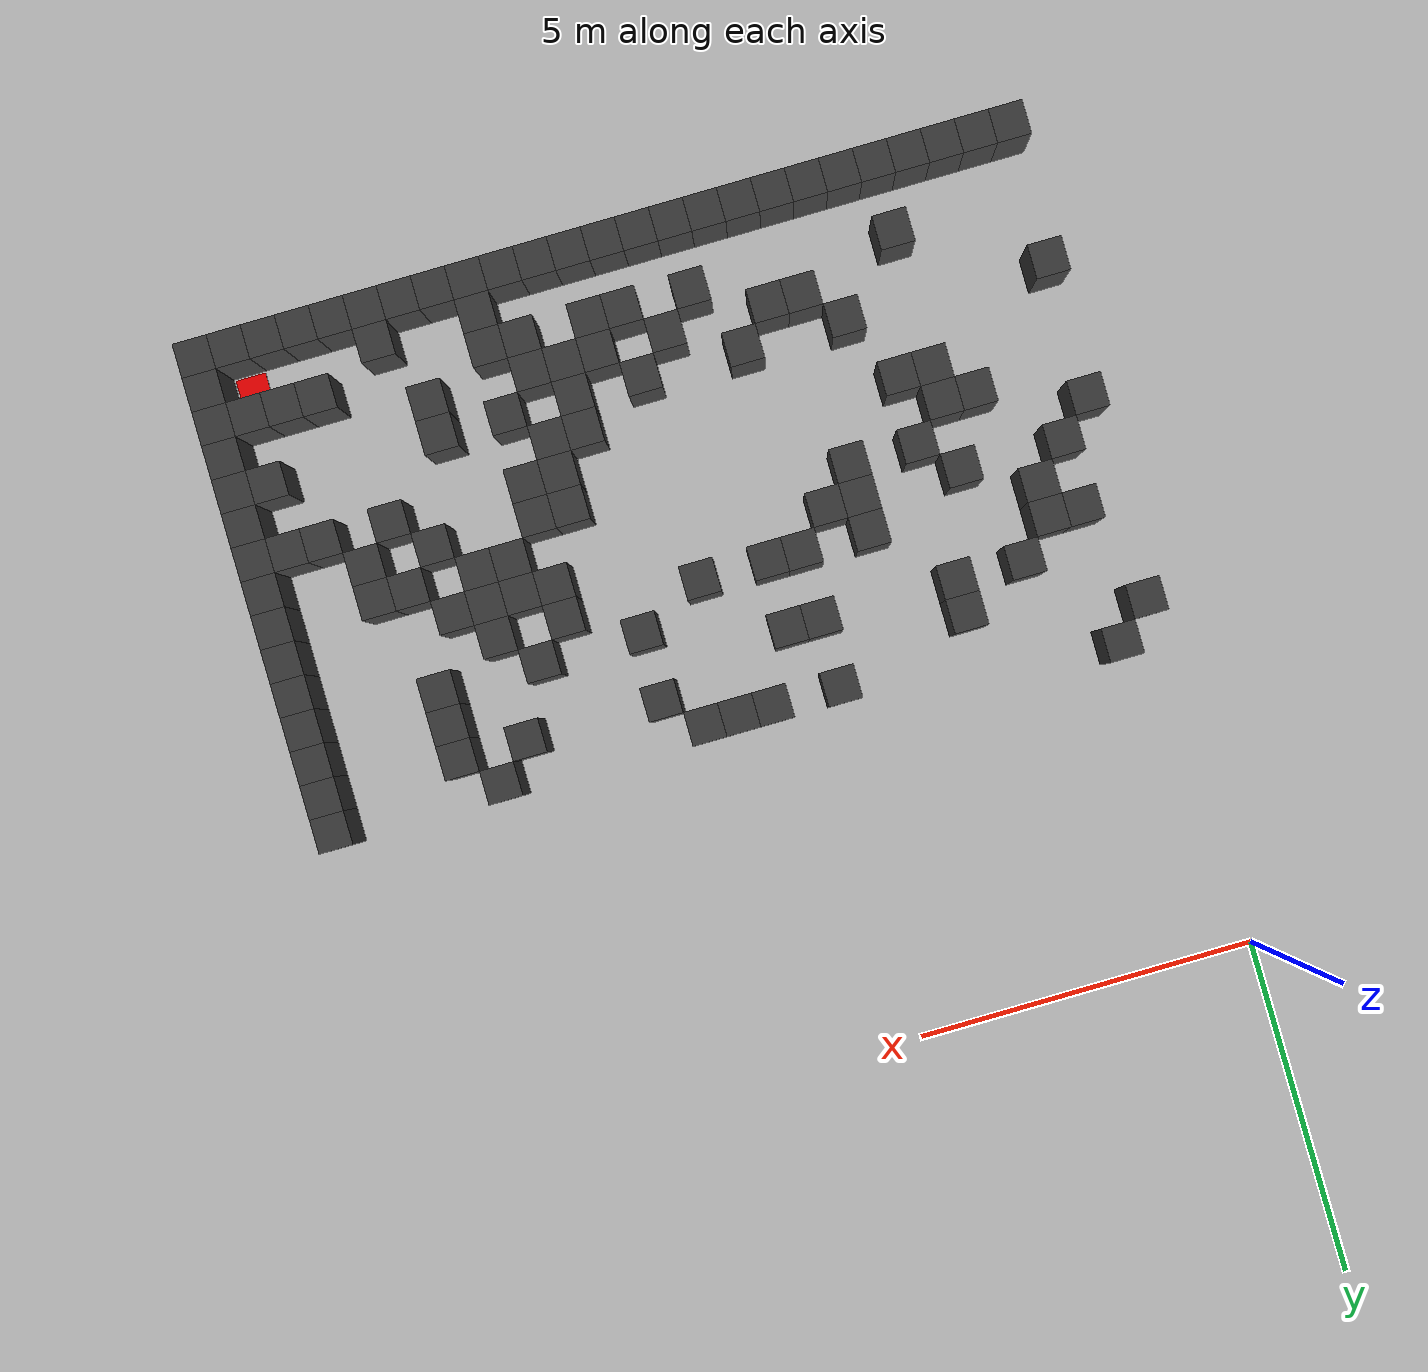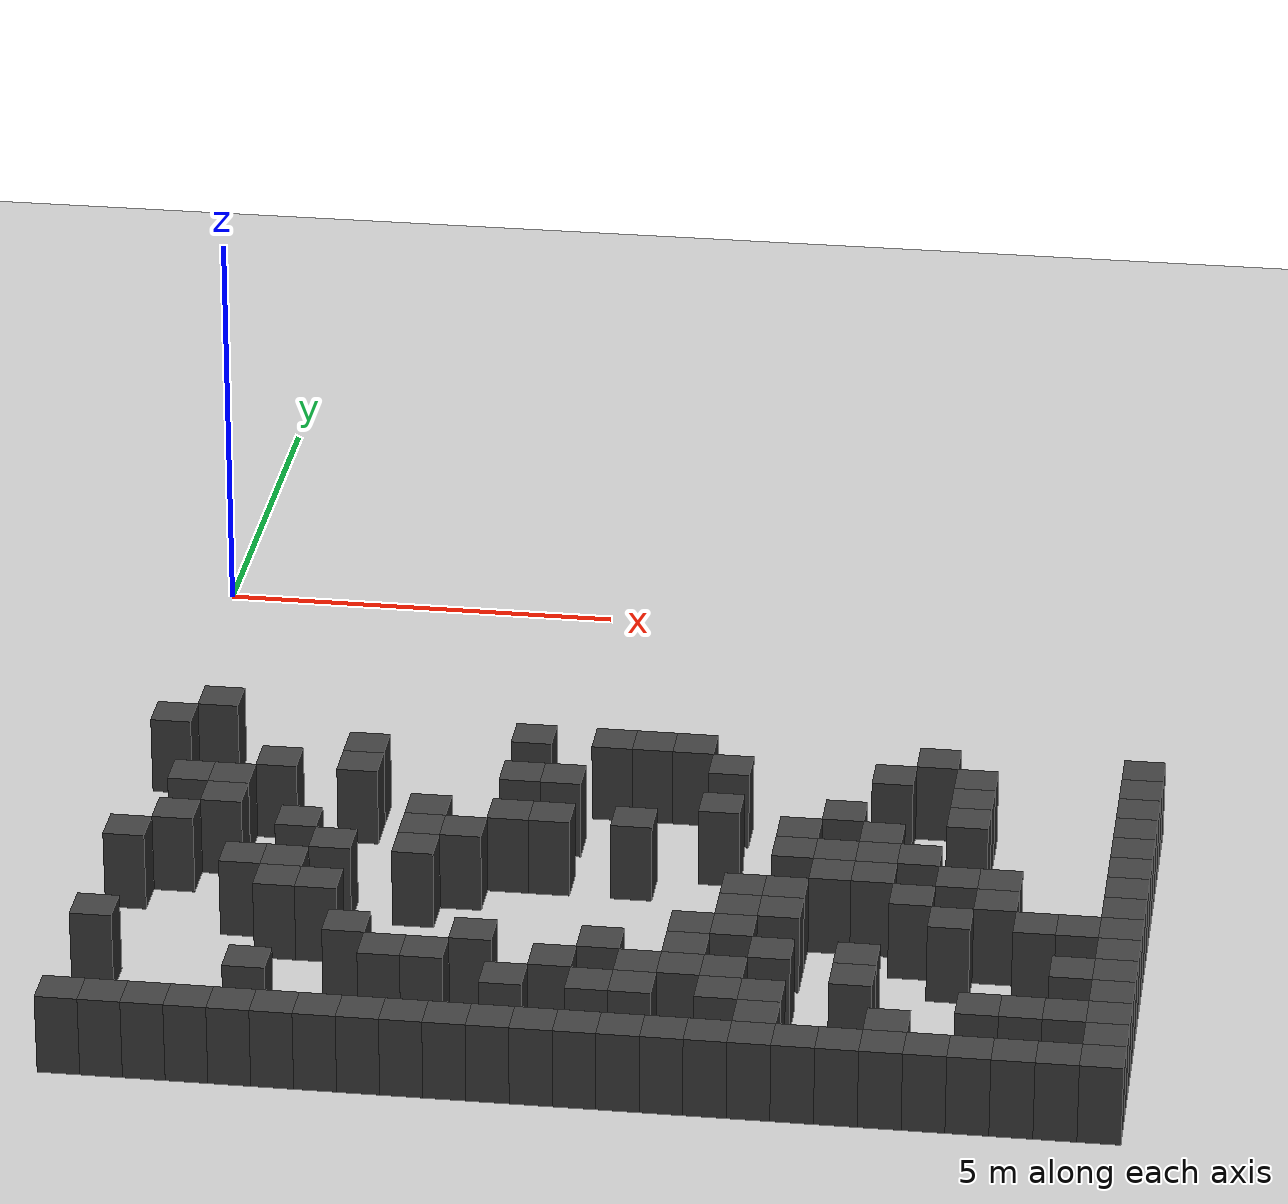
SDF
<sdf version="1.7">
 <world name="map_4951">
  <model name="ground_plane">
   <static>true</static>
   <link name="link">
    <collision name="collision">
     <geometry><plane><normal>0 0 1</normal><size>200 200</size></plane></geometry>
    </collision>
    <visual name="visual">
     <geometry><plane><normal>0 0 1</normal><size>200 200</size></plane></geometry>
     <material><ambient>0.8 0.8 0.8 1</ambient><diffuse>0.8 0.8 0.8 1</diffuse></material>
    </visual>
   </link>
  </model>
  <model name="maze_environment">
   <static>true</static>
   <link name="wall_494">
    <pose>0.750 -4.750 0.500 0 0 0</pose>
    <collision name="col"><geometry><box><size>0.5 0.5 1.0</size></box></geometry></collision>
    <visual name="vis">
     <geometry><box><size>0.5 0.5 1.0</size></box></geometry>
     <material><ambient>0.15 0.15 0.15 1</ambient><diffuse>0.25 0.25 0.25 1</diffuse></material>
    </visual>
   </link>
   <link name="wall_510">
    <pose>0.250 -5.250 0.500 0 0 0</pose>
    <collision name="col"><geometry><box><size>0.5 0.5 1.0</size></box></geometry></collision>
    <visual name="vis">
     <geometry><box><size>0.5 0.5 1.0</size></box></geometry>
     <material><ambient>0.15 0.15 0.15 1</ambient><diffuse>0.25 0.25 0.25 1</diffuse></material>
    </visual>
   </link>
   <link name="wall_511">
    <pose>4.750 -5.250 0.500 0 0 0</pose>
    <collision name="col"><geometry><box><size>0.5 0.5 1.0</size></box></geometry></collision>
    <visual name="vis">
     <geometry><box><size>0.5 0.5 1.0</size></box></geometry>
     <material><ambient>0.15 0.15 0.15 1</ambient><diffuse>0.25 0.25 0.25 1</diffuse></material>
    </visual>
   </link>
   <link name="wall_512">
    <pose>5.750 -5.250 0.500 0 0 0</pose>
    <collision name="col"><geometry><box><size>0.5 0.5 1.0</size></box></geometry></collision>
    <visual name="vis">
     <geometry><box><size>0.5 0.5 1.0</size></box></geometry>
     <material><ambient>0.15 0.15 0.15 1</ambient><diffuse>0.25 0.25 0.25 1</diffuse></material>
    </visual>
   </link>
   <link name="wall_513">
    <pose>6.250 -5.250 0.500 0 0 0</pose>
    <collision name="col"><geometry><box><size>0.5 0.5 1.0</size></box></geometry></collision>
    <visual name="vis">
     <geometry><box><size>0.5 0.5 1.0</size></box></geometry>
     <material><ambient>0.15 0.15 0.15 1</ambient><diffuse>0.25 0.25 0.25 1</diffuse></material>
    </visual>
   </link>
   <link name="wall_514">
    <pose>6.750 -5.250 0.500 0 0 0</pose>
    <collision name="col"><geometry><box><size>0.5 0.5 1.0</size></box></geometry></collision>
    <visual name="vis">
     <geometry><box><size>0.5 0.5 1.0</size></box></geometry>
     <material><ambient>0.15 0.15 0.15 1</ambient><diffuse>0.25 0.25 0.25 1</diffuse></material>
    </visual>
   </link>
   <link name="wall_515">
    <pose>9.750 -5.250 0.500 0 0 0</pose>
    <collision name="col"><geometry><box><size>0.5 0.5 1.0</size></box></geometry></collision>
    <visual name="vis">
     <geometry><box><size>0.5 0.5 1.0</size></box></geometry>
     <material><ambient>0.15 0.15 0.15 1</ambient><diffuse>0.25 0.25 0.25 1</diffuse></material>
    </visual>
   </link>
   <link name="wall_516">
    <pose>12.250 -5.250 0.500 0 0 0</pose>
    <collision name="col"><geometry><box><size>0.5 0.5 1.0</size></box></geometry></collision>
    <visual name="vis">
     <geometry><box><size>0.5 0.5 1.0</size></box></geometry>
     <material><ambient>0.15 0.15 0.15 1</ambient><diffuse>0.25 0.25 0.25 1</diffuse></material>
    </visual>
   </link>
   <link name="wall_524">
    <pose>2.750 -5.750 0.500 0 0 0</pose>
    <collision name="col"><geometry><box><size>0.5 0.5 1.0</size></box></geometry></collision>
    <visual name="vis">
     <geometry><box><size>0.5 0.5 1.0</size></box></geometry>
     <material><ambient>0.15 0.15 0.15 1</ambient><diffuse>0.25 0.25 0.25 1</diffuse></material>
    </visual>
   </link>
   <link name="wall_525">
    <pose>7.250 -5.750 0.500 0 0 0</pose>
    <collision name="col"><geometry><box><size>0.5 0.5 1.0</size></box></geometry></collision>
    <visual name="vis">
     <geometry><box><size>0.5 0.5 1.0</size></box></geometry>
     <material><ambient>0.15 0.15 0.15 1</ambient><diffuse>0.25 0.25 0.25 1</diffuse></material>
    </visual>
   </link>
   <link name="wall_526">
    <pose>9.250 -5.750 0.500 0 0 0</pose>
    <collision name="col"><geometry><box><size>0.5 0.5 1.0</size></box></geometry></collision>
    <visual name="vis">
     <geometry><box><size>0.5 0.5 1.0</size></box></geometry>
     <material><ambient>0.15 0.15 0.15 1</ambient><diffuse>0.25 0.25 0.25 1</diffuse></material>
    </visual>
   </link>
   <link name="wall_527">
    <pose>10.250 -5.750 0.500 0 0 0</pose>
    <collision name="col"><geometry><box><size>0.5 0.5 1.0</size></box></geometry></collision>
    <visual name="vis">
     <geometry><box><size>0.5 0.5 1.0</size></box></geometry>
     <material><ambient>0.15 0.15 0.15 1</ambient><diffuse>0.25 0.25 0.25 1</diffuse></material>
    </visual>
   </link>
   <link name="wall_528">
    <pose>12.250 -5.750 0.500 0 0 0</pose>
    <collision name="col"><geometry><box><size>0.5 0.5 1.0</size></box></geometry></collision>
    <visual name="vis">
     <geometry><box><size>0.5 0.5 1.0</size></box></geometry>
     <material><ambient>0.15 0.15 0.15 1</ambient><diffuse>0.25 0.25 0.25 1</diffuse></material>
    </visual>
   </link>
   <link name="wall_534">
    <pose>1.750 -6.250 0.500 0 0 0</pose>
    <collision name="col"><geometry><box><size>0.5 0.5 1.0</size></box></geometry></collision>
    <visual name="vis">
     <geometry><box><size>0.5 0.5 1.0</size></box></geometry>
     <material><ambient>0.15 0.15 0.15 1</ambient><diffuse>0.25 0.25 0.25 1</diffuse></material>
    </visual>
   </link>
   <link name="wall_535">
    <pose>2.750 -6.250 0.500 0 0 0</pose>
    <collision name="col"><geometry><box><size>0.5 0.5 1.0</size></box></geometry></collision>
    <visual name="vis">
     <geometry><box><size>0.5 0.5 1.0</size></box></geometry>
     <material><ambient>0.15 0.15 0.15 1</ambient><diffuse>0.25 0.25 0.25 1</diffuse></material>
    </visual>
   </link>
   <link name="wall_536">
    <pose>4.750 -6.250 0.500 0 0 0</pose>
    <collision name="col"><geometry><box><size>0.5 0.5 1.0</size></box></geometry></collision>
    <visual name="vis">
     <geometry><box><size>0.5 0.5 1.0</size></box></geometry>
     <material><ambient>0.15 0.15 0.15 1</ambient><diffuse>0.25 0.25 0.25 1</diffuse></material>
    </visual>
   </link>
   <link name="wall_537">
    <pose>5.250 -6.250 0.500 0 0 0</pose>
    <collision name="col"><geometry><box><size>0.5 0.5 1.0</size></box></geometry></collision>
    <visual name="vis">
     <geometry><box><size>0.5 0.5 1.0</size></box></geometry>
     <material><ambient>0.15 0.15 0.15 1</ambient><diffuse>0.25 0.25 0.25 1</diffuse></material>
    </visual>
   </link>
   <link name="wall_538">
    <pose>10.250 -6.250 0.500 0 0 0</pose>
    <collision name="col"><geometry><box><size>0.5 0.5 1.0</size></box></geometry></collision>
    <visual name="vis">
     <geometry><box><size>0.5 0.5 1.0</size></box></geometry>
     <material><ambient>0.15 0.15 0.15 1</ambient><diffuse>0.25 0.25 0.25 1</diffuse></material>
    </visual>
   </link>
   <link name="wall_539">
    <pose>12.250 -6.250 0.500 0 0 0</pose>
    <collision name="col"><geometry><box><size>0.5 0.5 1.0</size></box></geometry></collision>
    <visual name="vis">
     <geometry><box><size>0.5 0.5 1.0</size></box></geometry>
     <material><ambient>0.15 0.15 0.15 1</ambient><diffuse>0.25 0.25 0.25 1</diffuse></material>
    </visual>
   </link>
   <link name="wall_545">
    <pose>0.750 -6.750 0.500 0 0 0</pose>
    <collision name="col"><geometry><box><size>0.5 0.5 1.0</size></box></geometry></collision>
    <visual name="vis">
     <geometry><box><size>0.5 0.5 1.0</size></box></geometry>
     <material><ambient>0.15 0.15 0.15 1</ambient><diffuse>0.25 0.25 0.25 1</diffuse></material>
    </visual>
   </link>
   <link name="wall_546">
    <pose>1.250 -6.750 0.500 0 0 0</pose>
    <collision name="col"><geometry><box><size>0.5 0.5 1.0</size></box></geometry></collision>
    <visual name="vis">
     <geometry><box><size>0.5 0.5 1.0</size></box></geometry>
     <material><ambient>0.15 0.15 0.15 1</ambient><diffuse>0.25 0.25 0.25 1</diffuse></material>
    </visual>
   </link>
   <link name="wall_547">
    <pose>7.250 -6.750 0.500 0 0 0</pose>
    <collision name="col"><geometry><box><size>0.5 0.5 1.0</size></box></geometry></collision>
    <visual name="vis">
     <geometry><box><size>0.5 0.5 1.0</size></box></geometry>
     <material><ambient>0.15 0.15 0.15 1</ambient><diffuse>0.25 0.25 0.25 1</diffuse></material>
    </visual>
   </link>
   <link name="wall_548">
    <pose>8.750 -6.750 0.500 0 0 0</pose>
    <collision name="col"><geometry><box><size>0.5 0.5 1.0</size></box></geometry></collision>
    <visual name="vis">
     <geometry><box><size>0.5 0.5 1.0</size></box></geometry>
     <material><ambient>0.15 0.15 0.15 1</ambient><diffuse>0.25 0.25 0.25 1</diffuse></material>
    </visual>
   </link>
   <link name="wall_549">
    <pose>10.250 -6.750 0.500 0 0 0</pose>
    <collision name="col"><geometry><box><size>0.5 0.5 1.0</size></box></geometry></collision>
    <visual name="vis">
     <geometry><box><size>0.5 0.5 1.0</size></box></geometry>
     <material><ambient>0.15 0.15 0.15 1</ambient><diffuse>0.25 0.25 0.25 1</diffuse></material>
    </visual>
   </link>
   <link name="wall_550">
    <pose>12.250 -6.750 0.500 0 0 0</pose>
    <collision name="col"><geometry><box><size>0.5 0.5 1.0</size></box></geometry></collision>
    <visual name="vis">
     <geometry><box><size>0.5 0.5 1.0</size></box></geometry>
     <material><ambient>0.15 0.15 0.15 1</ambient><diffuse>0.25 0.25 0.25 1</diffuse></material>
    </visual>
   </link>
   <link name="wall_559">
    <pose>1.250 -7.250 0.500 0 0 0</pose>
    <collision name="col"><geometry><box><size>0.5 0.5 1.0</size></box></geometry></collision>
    <visual name="vis">
     <geometry><box><size>0.5 0.5 1.0</size></box></geometry>
     <material><ambient>0.15 0.15 0.15 1</ambient><diffuse>0.25 0.25 0.25 1</diffuse></material>
    </visual>
   </link>
   <link name="wall_560">
    <pose>3.750 -7.250 0.500 0 0 0</pose>
    <collision name="col"><geometry><box><size>0.5 0.5 1.0</size></box></geometry></collision>
    <visual name="vis">
     <geometry><box><size>0.5 0.5 1.0</size></box></geometry>
     <material><ambient>0.15 0.15 0.15 1</ambient><diffuse>0.25 0.25 0.25 1</diffuse></material>
    </visual>
   </link>
   <link name="wall_561">
    <pose>4.750 -7.250 0.500 0 0 0</pose>
    <collision name="col"><geometry><box><size>0.5 0.5 1.0</size></box></geometry></collision>
    <visual name="vis">
     <geometry><box><size>0.5 0.5 1.0</size></box></geometry>
     <material><ambient>0.15 0.15 0.15 1</ambient><diffuse>0.25 0.25 0.25 1</diffuse></material>
    </visual>
   </link>
   <link name="wall_562">
    <pose>5.250 -7.250 0.500 0 0 0</pose>
    <collision name="col"><geometry><box><size>0.5 0.5 1.0</size></box></geometry></collision>
    <visual name="vis">
     <geometry><box><size>0.5 0.5 1.0</size></box></geometry>
     <material><ambient>0.15 0.15 0.15 1</ambient><diffuse>0.25 0.25 0.25 1</diffuse></material>
    </visual>
   </link>
   <link name="wall_563">
    <pose>6.250 -7.250 0.500 0 0 0</pose>
    <collision name="col"><geometry><box><size>0.5 0.5 1.0</size></box></geometry></collision>
    <visual name="vis">
     <geometry><box><size>0.5 0.5 1.0</size></box></geometry>
     <material><ambient>0.15 0.15 0.15 1</ambient><diffuse>0.25 0.25 0.25 1</diffuse></material>
    </visual>
   </link>
   <link name="wall_564">
    <pose>8.250 -7.250 0.500 0 0 0</pose>
    <collision name="col"><geometry><box><size>0.5 0.5 1.0</size></box></geometry></collision>
    <visual name="vis">
     <geometry><box><size>0.5 0.5 1.0</size></box></geometry>
     <material><ambient>0.15 0.15 0.15 1</ambient><diffuse>0.25 0.25 0.25 1</diffuse></material>
    </visual>
   </link>
   <link name="wall_565">
    <pose>9.250 -7.250 0.500 0 0 0</pose>
    <collision name="col"><geometry><box><size>0.5 0.5 1.0</size></box></geometry></collision>
    <visual name="vis">
     <geometry><box><size>0.5 0.5 1.0</size></box></geometry>
     <material><ambient>0.15 0.15 0.15 1</ambient><diffuse>0.25 0.25 0.25 1</diffuse></material>
    </visual>
   </link>
   <link name="wall_566">
    <pose>12.250 -7.250 0.500 0 0 0</pose>
    <collision name="col"><geometry><box><size>0.5 0.5 1.0</size></box></geometry></collision>
    <visual name="vis">
     <geometry><box><size>0.5 0.5 1.0</size></box></geometry>
     <material><ambient>0.15 0.15 0.15 1</ambient><diffuse>0.25 0.25 0.25 1</diffuse></material>
    </visual>
   </link>
   <link name="wall_570">
    <pose>0.750 -7.750 0.500 0 0 0</pose>
    <collision name="col"><geometry><box><size>0.5 0.5 1.0</size></box></geometry></collision>
    <visual name="vis">
     <geometry><box><size>0.5 0.5 1.0</size></box></geometry>
     <material><ambient>0.15 0.15 0.15 1</ambient><diffuse>0.25 0.25 0.25 1</diffuse></material>
    </visual>
   </link>
   <link name="wall_571">
    <pose>2.250 -7.750 0.500 0 0 0</pose>
    <collision name="col"><geometry><box><size>0.5 0.5 1.0</size></box></geometry></collision>
    <visual name="vis">
     <geometry><box><size>0.5 0.5 1.0</size></box></geometry>
     <material><ambient>0.15 0.15 0.15 1</ambient><diffuse>0.25 0.25 0.25 1</diffuse></material>
    </visual>
   </link>
   <link name="wall_572">
    <pose>3.750 -7.750 0.500 0 0 0</pose>
    <collision name="col"><geometry><box><size>0.5 0.5 1.0</size></box></geometry></collision>
    <visual name="vis">
     <geometry><box><size>0.5 0.5 1.0</size></box></geometry>
     <material><ambient>0.15 0.15 0.15 1</ambient><diffuse>0.25 0.25 0.25 1</diffuse></material>
    </visual>
   </link>
   <link name="wall_573">
    <pose>4.250 -7.750 0.500 0 0 0</pose>
    <collision name="col"><geometry><box><size>0.5 0.5 1.0</size></box></geometry></collision>
    <visual name="vis">
     <geometry><box><size>0.5 0.5 1.0</size></box></geometry>
     <material><ambient>0.15 0.15 0.15 1</ambient><diffuse>0.25 0.25 0.25 1</diffuse></material>
    </visual>
   </link>
   <link name="wall_574">
    <pose>8.250 -7.750 0.500 0 0 0</pose>
    <collision name="col"><geometry><box><size>0.5 0.5 1.0</size></box></geometry></collision>
    <visual name="vis">
     <geometry><box><size>0.5 0.5 1.0</size></box></geometry>
     <material><ambient>0.15 0.15 0.15 1</ambient><diffuse>0.25 0.25 0.25 1</diffuse></material>
    </visual>
   </link>
   <link name="wall_575">
    <pose>8.750 -7.750 0.500 0 0 0</pose>
    <collision name="col"><geometry><box><size>0.5 0.5 1.0</size></box></geometry></collision>
    <visual name="vis">
     <geometry><box><size>0.5 0.5 1.0</size></box></geometry>
     <material><ambient>0.15 0.15 0.15 1</ambient><diffuse>0.25 0.25 0.25 1</diffuse></material>
    </visual>
   </link>
   <link name="wall_576">
    <pose>9.250 -7.750 0.500 0 0 0</pose>
    <collision name="col"><geometry><box><size>0.5 0.5 1.0</size></box></geometry></collision>
    <visual name="vis">
     <geometry><box><size>0.5 0.5 1.0</size></box></geometry>
     <material><ambient>0.15 0.15 0.15 1</ambient><diffuse>0.25 0.25 0.25 1</diffuse></material>
    </visual>
   </link>
   <link name="wall_577">
    <pose>9.750 -7.750 0.500 0 0 0</pose>
    <collision name="col"><geometry><box><size>0.5 0.5 1.0</size></box></geometry></collision>
    <visual name="vis">
     <geometry><box><size>0.5 0.5 1.0</size></box></geometry>
     <material><ambient>0.15 0.15 0.15 1</ambient><diffuse>0.25 0.25 0.25 1</diffuse></material>
    </visual>
   </link>
   <link name="wall_578">
    <pose>12.250 -7.750 0.500 0 0 0</pose>
    <collision name="col"><geometry><box><size>0.5 0.5 1.0</size></box></geometry></collision>
    <visual name="vis">
     <geometry><box><size>0.5 0.5 1.0</size></box></geometry>
     <material><ambient>0.15 0.15 0.15 1</ambient><diffuse>0.25 0.25 0.25 1</diffuse></material>
    </visual>
   </link>
   <link name="wall_588">
    <pose>0.250 -8.250 0.500 0 0 0</pose>
    <collision name="col"><geometry><box><size>0.5 0.5 1.0</size></box></geometry></collision>
    <visual name="vis">
     <geometry><box><size>0.5 0.5 1.0</size></box></geometry>
     <material><ambient>0.15 0.15 0.15 1</ambient><diffuse>0.25 0.25 0.25 1</diffuse></material>
    </visual>
   </link>
   <link name="wall_589">
    <pose>2.750 -8.250 0.500 0 0 0</pose>
    <collision name="col"><geometry><box><size>0.5 0.5 1.0</size></box></geometry></collision>
    <visual name="vis">
     <geometry><box><size>0.5 0.5 1.0</size></box></geometry>
     <material><ambient>0.15 0.15 0.15 1</ambient><diffuse>0.25 0.25 0.25 1</diffuse></material>
    </visual>
   </link>
   <link name="wall_590">
    <pose>3.750 -8.250 0.500 0 0 0</pose>
    <collision name="col"><geometry><box><size>0.5 0.5 1.0</size></box></geometry></collision>
    <visual name="vis">
     <geometry><box><size>0.5 0.5 1.0</size></box></geometry>
     <material><ambient>0.15 0.15 0.15 1</ambient><diffuse>0.25 0.25 0.25 1</diffuse></material>
    </visual>
   </link>
   <link name="wall_591">
    <pose>8.750 -8.250 0.500 0 0 0</pose>
    <collision name="col"><geometry><box><size>0.5 0.5 1.0</size></box></geometry></collision>
    <visual name="vis">
     <geometry><box><size>0.5 0.5 1.0</size></box></geometry>
     <material><ambient>0.15 0.15 0.15 1</ambient><diffuse>0.25 0.25 0.25 1</diffuse></material>
    </visual>
   </link>
   <link name="wall_592">
    <pose>9.250 -8.250 0.500 0 0 0</pose>
    <collision name="col"><geometry><box><size>0.5 0.5 1.0</size></box></geometry></collision>
    <visual name="vis">
     <geometry><box><size>0.5 0.5 1.0</size></box></geometry>
     <material><ambient>0.15 0.15 0.15 1</ambient><diffuse>0.25 0.25 0.25 1</diffuse></material>
    </visual>
   </link>
   <link name="wall_593">
    <pose>10.250 -8.250 0.500 0 0 0</pose>
    <collision name="col"><geometry><box><size>0.5 0.5 1.0</size></box></geometry></collision>
    <visual name="vis">
     <geometry><box><size>0.5 0.5 1.0</size></box></geometry>
     <material><ambient>0.15 0.15 0.15 1</ambient><diffuse>0.25 0.25 0.25 1</diffuse></material>
    </visual>
   </link>
   <link name="wall_594">
    <pose>10.750 -8.250 0.500 0 0 0</pose>
    <collision name="col"><geometry><box><size>0.5 0.5 1.0</size></box></geometry></collision>
    <visual name="vis">
     <geometry><box><size>0.5 0.5 1.0</size></box></geometry>
     <material><ambient>0.15 0.15 0.15 1</ambient><diffuse>0.25 0.25 0.25 1</diffuse></material>
    </visual>
   </link>
   <link name="wall_595">
    <pose>12.250 -8.250 0.500 0 0 0</pose>
    <collision name="col"><geometry><box><size>0.5 0.5 1.0</size></box></geometry></collision>
    <visual name="vis">
     <geometry><box><size>0.5 0.5 1.0</size></box></geometry>
     <material><ambient>0.15 0.15 0.15 1</ambient><diffuse>0.25 0.25 0.25 1</diffuse></material>
    </visual>
   </link>
   <link name="wall_602">
    <pose>1.750 -8.750 0.500 0 0 0</pose>
    <collision name="col"><geometry><box><size>0.5 0.5 1.0</size></box></geometry></collision>
    <visual name="vis">
     <geometry><box><size>0.5 0.5 1.0</size></box></geometry>
     <material><ambient>0.15 0.15 0.15 1</ambient><diffuse>0.25 0.25 0.25 1</diffuse></material>
    </visual>
   </link>
   <link name="wall_603">
    <pose>2.250 -8.750 0.500 0 0 0</pose>
    <collision name="col"><geometry><box><size>0.5 0.5 1.0</size></box></geometry></collision>
    <visual name="vis">
     <geometry><box><size>0.5 0.5 1.0</size></box></geometry>
     <material><ambient>0.15 0.15 0.15 1</ambient><diffuse>0.25 0.25 0.25 1</diffuse></material>
    </visual>
   </link>
   <link name="wall_604">
    <pose>7.750 -8.750 0.500 0 0 0</pose>
    <collision name="col"><geometry><box><size>0.5 0.5 1.0</size></box></geometry></collision>
    <visual name="vis">
     <geometry><box><size>0.5 0.5 1.0</size></box></geometry>
     <material><ambient>0.15 0.15 0.15 1</ambient><diffuse>0.25 0.25 0.25 1</diffuse></material>
    </visual>
   </link>
   <link name="wall_605">
    <pose>8.250 -8.750 0.500 0 0 0</pose>
    <collision name="col"><geometry><box><size>0.5 0.5 1.0</size></box></geometry></collision>
    <visual name="vis">
     <geometry><box><size>0.5 0.5 1.0</size></box></geometry>
     <material><ambient>0.15 0.15 0.15 1</ambient><diffuse>0.25 0.25 0.25 1</diffuse></material>
    </visual>
   </link>
   <link name="wall_606">
    <pose>9.750 -8.750 0.500 0 0 0</pose>
    <collision name="col"><geometry><box><size>0.5 0.5 1.0</size></box></geometry></collision>
    <visual name="vis">
     <geometry><box><size>0.5 0.5 1.0</size></box></geometry>
     <material><ambient>0.15 0.15 0.15 1</ambient><diffuse>0.25 0.25 0.25 1</diffuse></material>
    </visual>
   </link>
   <link name="wall_607">
    <pose>10.750 -8.750 0.500 0 0 0</pose>
    <collision name="col"><geometry><box><size>0.5 0.5 1.0</size></box></geometry></collision>
    <visual name="vis">
     <geometry><box><size>0.5 0.5 1.0</size></box></geometry>
     <material><ambient>0.15 0.15 0.15 1</ambient><diffuse>0.25 0.25 0.25 1</diffuse></material>
    </visual>
   </link>
   <link name="wall_608">
    <pose>12.250 -8.750 0.500 0 0 0</pose>
    <collision name="col"><geometry><box><size>0.5 0.5 1.0</size></box></geometry></collision>
    <visual name="vis">
     <geometry><box><size>0.5 0.5 1.0</size></box></geometry>
     <material><ambient>0.15 0.15 0.15 1</ambient><diffuse>0.25 0.25 0.25 1</diffuse></material>
    </visual>
   </link>
   <link name="wall_617">
    <pose>2.250 -9.250 0.500 0 0 0</pose>
    <collision name="col"><geometry><box><size>0.5 0.5 1.0</size></box></geometry></collision>
    <visual name="vis">
     <geometry><box><size>0.5 0.5 1.0</size></box></geometry>
     <material><ambient>0.15 0.15 0.15 1</ambient><diffuse>0.25 0.25 0.25 1</diffuse></material>
    </visual>
   </link>
   <link name="wall_618">
    <pose>2.750 -9.250 0.500 0 0 0</pose>
    <collision name="col"><geometry><box><size>0.5 0.5 1.0</size></box></geometry></collision>
    <visual name="vis">
     <geometry><box><size>0.5 0.5 1.0</size></box></geometry>
     <material><ambient>0.15 0.15 0.15 1</ambient><diffuse>0.25 0.25 0.25 1</diffuse></material>
    </visual>
   </link>
   <link name="wall_619">
    <pose>7.750 -9.250 0.500 0 0 0</pose>
    <collision name="col"><geometry><box><size>0.5 0.5 1.0</size></box></geometry></collision>
    <visual name="vis">
     <geometry><box><size>0.5 0.5 1.0</size></box></geometry>
     <material><ambient>0.15 0.15 0.15 1</ambient><diffuse>0.25 0.25 0.25 1</diffuse></material>
    </visual>
   </link>
   <link name="wall_620">
    <pose>8.250 -9.250 0.500 0 0 0</pose>
    <collision name="col"><geometry><box><size>0.5 0.5 1.0</size></box></geometry></collision>
    <visual name="vis">
     <geometry><box><size>0.5 0.5 1.0</size></box></geometry>
     <material><ambient>0.15 0.15 0.15 1</ambient><diffuse>0.25 0.25 0.25 1</diffuse></material>
    </visual>
   </link>
   <link name="wall_621">
    <pose>10.250 -9.250 0.500 0 0 0</pose>
    <collision name="col"><geometry><box><size>0.5 0.5 1.0</size></box></geometry></collision>
    <visual name="vis">
     <geometry><box><size>0.5 0.5 1.0</size></box></geometry>
     <material><ambient>0.15 0.15 0.15 1</ambient><diffuse>0.25 0.25 0.25 1</diffuse></material>
    </visual>
   </link>
   <link name="wall_622">
    <pose>11.250 -9.250 0.500 0 0 0</pose>
    <collision name="col"><geometry><box><size>0.5 0.5 1.0</size></box></geometry></collision>
    <visual name="vis">
     <geometry><box><size>0.5 0.5 1.0</size></box></geometry>
     <material><ambient>0.15 0.15 0.15 1</ambient><diffuse>0.25 0.25 0.25 1</diffuse></material>
    </visual>
   </link>
   <link name="wall_623">
    <pose>11.750 -9.250 0.500 0 0 0</pose>
    <collision name="col"><geometry><box><size>0.5 0.5 1.0</size></box></geometry></collision>
    <visual name="vis">
     <geometry><box><size>0.5 0.5 1.0</size></box></geometry>
     <material><ambient>0.15 0.15 0.15 1</ambient><diffuse>0.25 0.25 0.25 1</diffuse></material>
    </visual>
   </link>
   <link name="wall_624">
    <pose>12.250 -9.250 0.500 0 0 0</pose>
    <collision name="col"><geometry><box><size>0.5 0.5 1.0</size></box></geometry></collision>
    <visual name="vis">
     <geometry><box><size>0.5 0.5 1.0</size></box></geometry>
     <material><ambient>0.15 0.15 0.15 1</ambient><diffuse>0.25 0.25 0.25 1</diffuse></material>
    </visual>
   </link>
   <link name="wall_632">
    <pose>7.250 -9.750 0.500 0 0 0</pose>
    <collision name="col"><geometry><box><size>0.5 0.5 1.0</size></box></geometry></collision>
    <visual name="vis">
     <geometry><box><size>0.5 0.5 1.0</size></box></geometry>
     <material><ambient>0.15 0.15 0.15 1</ambient><diffuse>0.25 0.25 0.25 1</diffuse></material>
    </visual>
   </link>
   <link name="wall_633">
    <pose>7.750 -9.750 0.500 0 0 0</pose>
    <collision name="col"><geometry><box><size>0.5 0.5 1.0</size></box></geometry></collision>
    <visual name="vis">
     <geometry><box><size>0.5 0.5 1.0</size></box></geometry>
     <material><ambient>0.15 0.15 0.15 1</ambient><diffuse>0.25 0.25 0.25 1</diffuse></material>
    </visual>
   </link>
   <link name="wall_634">
    <pose>12.250 -9.750 0.500 0 0 0</pose>
    <collision name="col"><geometry><box><size>0.5 0.5 1.0</size></box></geometry></collision>
    <visual name="vis">
     <geometry><box><size>0.5 0.5 1.0</size></box></geometry>
     <material><ambient>0.15 0.15 0.15 1</ambient><diffuse>0.25 0.25 0.25 1</diffuse></material>
    </visual>
   </link>
   <link name="wall_644">
    <pose>0.250 -10.250 0.500 0 0 0</pose>
    <collision name="col"><geometry><box><size>0.5 0.5 1.0</size></box></geometry></collision>
    <visual name="vis">
     <geometry><box><size>0.5 0.5 1.0</size></box></geometry>
     <material><ambient>0.15 0.15 0.15 1</ambient><diffuse>0.25 0.25 0.25 1</diffuse></material>
    </visual>
   </link>
   <link name="wall_645">
    <pose>3.250 -10.250 0.500 0 0 0</pose>
    <collision name="col"><geometry><box><size>0.5 0.5 1.0</size></box></geometry></collision>
    <visual name="vis">
     <geometry><box><size>0.5 0.5 1.0</size></box></geometry>
     <material><ambient>0.15 0.15 0.15 1</ambient><diffuse>0.25 0.25 0.25 1</diffuse></material>
    </visual>
   </link>
   <link name="wall_646">
    <pose>4.750 -10.250 0.500 0 0 0</pose>
    <collision name="col"><geometry><box><size>0.5 0.5 1.0</size></box></geometry></collision>
    <visual name="vis">
     <geometry><box><size>0.5 0.5 1.0</size></box></geometry>
     <material><ambient>0.15 0.15 0.15 1</ambient><diffuse>0.25 0.25 0.25 1</diffuse></material>
    </visual>
   </link>
   <link name="wall_647">
    <pose>6.250 -10.250 0.500 0 0 0</pose>
    <collision name="col"><geometry><box><size>0.5 0.5 1.0</size></box></geometry></collision>
    <visual name="vis">
     <geometry><box><size>0.5 0.5 1.0</size></box></geometry>
     <material><ambient>0.15 0.15 0.15 1</ambient><diffuse>0.25 0.25 0.25 1</diffuse></material>
    </visual>
   </link>
   <link name="wall_648">
    <pose>7.250 -10.250 0.500 0 0 0</pose>
    <collision name="col"><geometry><box><size>0.5 0.5 1.0</size></box></geometry></collision>
    <visual name="vis">
     <geometry><box><size>0.5 0.5 1.0</size></box></geometry>
     <material><ambient>0.15 0.15 0.15 1</ambient><diffuse>0.25 0.25 0.25 1</diffuse></material>
    </visual>
   </link>
   <link name="wall_649">
    <pose>8.250 -10.250 0.500 0 0 0</pose>
    <collision name="col"><geometry><box><size>0.5 0.5 1.0</size></box></geometry></collision>
    <visual name="vis">
     <geometry><box><size>0.5 0.5 1.0</size></box></geometry>
     <material><ambient>0.15 0.15 0.15 1</ambient><diffuse>0.25 0.25 0.25 1</diffuse></material>
    </visual>
   </link>
   <link name="wall_650">
    <pose>9.250 -10.250 0.500 0 0 0</pose>
    <collision name="col"><geometry><box><size>0.5 0.5 1.0</size></box></geometry></collision>
    <visual name="vis">
     <geometry><box><size>0.5 0.5 1.0</size></box></geometry>
     <material><ambient>0.15 0.15 0.15 1</ambient><diffuse>0.25 0.25 0.25 1</diffuse></material>
    </visual>
   </link>
   <link name="wall_651">
    <pose>11.750 -10.250 0.500 0 0 0</pose>
    <collision name="col"><geometry><box><size>0.5 0.5 1.0</size></box></geometry></collision>
    <visual name="vis">
     <geometry><box><size>0.5 0.5 1.0</size></box></geometry>
     <material><ambient>0.15 0.15 0.15 1</ambient><diffuse>0.25 0.25 0.25 1</diffuse></material>
    </visual>
   </link>
   <link name="wall_652">
    <pose>12.250 -10.250 0.500 0 0 0</pose>
    <collision name="col"><geometry><box><size>0.5 0.5 1.0</size></box></geometry></collision>
    <visual name="vis">
     <geometry><box><size>0.5 0.5 1.0</size></box></geometry>
     <material><ambient>0.15 0.15 0.15 1</ambient><diffuse>0.25 0.25 0.25 1</diffuse></material>
    </visual>
   </link>
   <link name="wall_655">
    <pose>3.750 -10.750 0.500 0 0 0</pose>
    <collision name="col"><geometry><box><size>0.5 0.5 1.0</size></box></geometry></collision>
    <visual name="vis">
     <geometry><box><size>0.5 0.5 1.0</size></box></geometry>
     <material><ambient>0.15 0.15 0.15 1</ambient><diffuse>0.25 0.25 0.25 1</diffuse></material>
    </visual>
   </link>
   <link name="wall_656">
    <pose>4.250 -10.750 0.500 0 0 0</pose>
    <collision name="col"><geometry><box><size>0.5 0.5 1.0</size></box></geometry></collision>
    <visual name="vis">
     <geometry><box><size>0.5 0.5 1.0</size></box></geometry>
     <material><ambient>0.15 0.15 0.15 1</ambient><diffuse>0.25 0.25 0.25 1</diffuse></material>
    </visual>
   </link>
   <link name="wall_657">
    <pose>5.750 -10.750 0.500 0 0 0</pose>
    <collision name="col"><geometry><box><size>0.5 0.5 1.0</size></box></geometry></collision>
    <visual name="vis">
     <geometry><box><size>0.5 0.5 1.0</size></box></geometry>
     <material><ambient>0.15 0.15 0.15 1</ambient><diffuse>0.25 0.25 0.25 1</diffuse></material>
    </visual>
   </link>
   <link name="wall_658">
    <pose>6.750 -10.750 0.500 0 0 0</pose>
    <collision name="col"><geometry><box><size>0.5 0.5 1.0</size></box></geometry></collision>
    <visual name="vis">
     <geometry><box><size>0.5 0.5 1.0</size></box></geometry>
     <material><ambient>0.15 0.15 0.15 1</ambient><diffuse>0.25 0.25 0.25 1</diffuse></material>
    </visual>
   </link>
   <link name="wall_659">
    <pose>7.250 -10.750 0.500 0 0 0</pose>
    <collision name="col"><geometry><box><size>0.5 0.5 1.0</size></box></geometry></collision>
    <visual name="vis">
     <geometry><box><size>0.5 0.5 1.0</size></box></geometry>
     <material><ambient>0.15 0.15 0.15 1</ambient><diffuse>0.25 0.25 0.25 1</diffuse></material>
    </visual>
   </link>
   <link name="wall_660">
    <pose>7.750 -10.750 0.500 0 0 0</pose>
    <collision name="col"><geometry><box><size>0.5 0.5 1.0</size></box></geometry></collision>
    <visual name="vis">
     <geometry><box><size>0.5 0.5 1.0</size></box></geometry>
     <material><ambient>0.15 0.15 0.15 1</ambient><diffuse>0.25 0.25 0.25 1</diffuse></material>
    </visual>
   </link>
   <link name="wall_661">
    <pose>9.250 -10.750 0.500 0 0 0</pose>
    <collision name="col"><geometry><box><size>0.5 0.5 1.0</size></box></geometry></collision>
    <visual name="vis">
     <geometry><box><size>0.5 0.5 1.0</size></box></geometry>
     <material><ambient>0.15 0.15 0.15 1</ambient><diffuse>0.25 0.25 0.25 1</diffuse></material>
    </visual>
   </link>
   <link name="wall_662">
    <pose>12.250 -10.750 0.500 0 0 0</pose>
    <collision name="col"><geometry><box><size>0.5 0.5 1.0</size></box></geometry></collision>
    <visual name="vis">
     <geometry><box><size>0.5 0.5 1.0</size></box></geometry>
     <material><ambient>0.15 0.15 0.15 1</ambient><diffuse>0.25 0.25 0.25 1</diffuse></material>
    </visual>
   </link>
   <link name="wall_673">
    <pose>2.250 -11.250 0.500 0 0 0</pose>
    <collision name="col"><geometry><box><size>0.5 0.5 1.0</size></box></geometry></collision>
    <visual name="vis">
     <geometry><box><size>0.5 0.5 1.0</size></box></geometry>
     <material><ambient>0.15 0.15 0.15 1</ambient><diffuse>0.25 0.25 0.25 1</diffuse></material>
    </visual>
   </link>
   <link name="wall_674">
    <pose>5.250 -11.250 0.500 0 0 0</pose>
    <collision name="col"><geometry><box><size>0.5 0.5 1.0</size></box></geometry></collision>
    <visual name="vis">
     <geometry><box><size>0.5 0.5 1.0</size></box></geometry>
     <material><ambient>0.15 0.15 0.15 1</ambient><diffuse>0.25 0.25 0.25 1</diffuse></material>
    </visual>
   </link>
   <link name="wall_675">
    <pose>6.250 -11.250 0.500 0 0 0</pose>
    <collision name="col"><geometry><box><size>0.5 0.5 1.0</size></box></geometry></collision>
    <visual name="vis">
     <geometry><box><size>0.5 0.5 1.0</size></box></geometry>
     <material><ambient>0.15 0.15 0.15 1</ambient><diffuse>0.25 0.25 0.25 1</diffuse></material>
    </visual>
   </link>
   <link name="wall_676">
    <pose>6.750 -11.250 0.500 0 0 0</pose>
    <collision name="col"><geometry><box><size>0.5 0.5 1.0</size></box></geometry></collision>
    <visual name="vis">
     <geometry><box><size>0.5 0.5 1.0</size></box></geometry>
     <material><ambient>0.15 0.15 0.15 1</ambient><diffuse>0.25 0.25 0.25 1</diffuse></material>
    </visual>
   </link>
   <link name="wall_677">
    <pose>7.750 -11.250 0.500 0 0 0</pose>
    <collision name="col"><geometry><box><size>0.5 0.5 1.0</size></box></geometry></collision>
    <visual name="vis">
     <geometry><box><size>0.5 0.5 1.0</size></box></geometry>
     <material><ambient>0.15 0.15 0.15 1</ambient><diffuse>0.25 0.25 0.25 1</diffuse></material>
    </visual>
   </link>
   <link name="wall_678">
    <pose>8.250 -11.250 0.500 0 0 0</pose>
    <collision name="col"><geometry><box><size>0.5 0.5 1.0</size></box></geometry></collision>
    <visual name="vis">
     <geometry><box><size>0.5 0.5 1.0</size></box></geometry>
     <material><ambient>0.15 0.15 0.15 1</ambient><diffuse>0.25 0.25 0.25 1</diffuse></material>
    </visual>
   </link>
   <link name="wall_679">
    <pose>10.750 -11.250 0.500 0 0 0</pose>
    <collision name="col"><geometry><box><size>0.5 0.5 1.0</size></box></geometry></collision>
    <visual name="vis">
     <geometry><box><size>0.5 0.5 1.0</size></box></geometry>
     <material><ambient>0.15 0.15 0.15 1</ambient><diffuse>0.25 0.25 0.25 1</diffuse></material>
    </visual>
   </link>
   <link name="wall_680">
    <pose>11.250 -11.250 0.500 0 0 0</pose>
    <collision name="col"><geometry><box><size>0.5 0.5 1.0</size></box></geometry></collision>
    <visual name="vis">
     <geometry><box><size>0.5 0.5 1.0</size></box></geometry>
     <material><ambient>0.15 0.15 0.15 1</ambient><diffuse>0.25 0.25 0.25 1</diffuse></material>
    </visual>
   </link>
   <link name="wall_681">
    <pose>11.750 -11.250 0.500 0 0 0</pose>
    <collision name="col"><geometry><box><size>0.5 0.5 1.0</size></box></geometry></collision>
    <visual name="vis">
     <geometry><box><size>0.5 0.5 1.0</size></box></geometry>
     <material><ambient>0.15 0.15 0.15 1</ambient><diffuse>0.25 0.25 0.25 1</diffuse></material>
    </visual>
   </link>
   <link name="wall_682">
    <pose>12.250 -11.250 0.500 0 0 0</pose>
    <collision name="col"><geometry><box><size>0.5 0.5 1.0</size></box></geometry></collision>
    <visual name="vis">
     <geometry><box><size>0.5 0.5 1.0</size></box></geometry>
     <material><ambient>0.15 0.15 0.15 1</ambient><diffuse>0.25 0.25 0.25 1</diffuse></material>
    </visual>
   </link>
   <link name="wall_688">
    <pose>8.250 -11.750 0.500 0 0 0</pose>
    <collision name="col"><geometry><box><size>0.5 0.5 1.0</size></box></geometry></collision>
    <visual name="vis">
     <geometry><box><size>0.5 0.5 1.0</size></box></geometry>
     <material><ambient>0.15 0.15 0.15 1</ambient><diffuse>0.25 0.25 0.25 1</diffuse></material>
    </visual>
   </link>
   <link name="wall_689">
    <pose>9.750 -11.750 0.500 0 0 0</pose>
    <collision name="col"><geometry><box><size>0.5 0.5 1.0</size></box></geometry></collision>
    <visual name="vis">
     <geometry><box><size>0.5 0.5 1.0</size></box></geometry>
     <material><ambient>0.15 0.15 0.15 1</ambient><diffuse>0.25 0.25 0.25 1</diffuse></material>
    </visual>
   </link>
   <link name="wall_690">
    <pose>12.250 -11.750 0.500 0 0 0</pose>
    <collision name="col"><geometry><box><size>0.5 0.5 1.0</size></box></geometry></collision>
    <visual name="vis">
     <geometry><box><size>0.5 0.5 1.0</size></box></geometry>
     <material><ambient>0.15 0.15 0.15 1</ambient><diffuse>0.25 0.25 0.25 1</diffuse></material>
    </visual>
   </link>
   <link name="wall_716">
    <pose>0.250 -12.250 0.500 0 0 0</pose>
    <collision name="col"><geometry><box><size>0.5 0.5 1.0</size></box></geometry></collision>
    <visual name="vis">
     <geometry><box><size>0.5 0.5 1.0</size></box></geometry>
     <material><ambient>0.15 0.15 0.15 1</ambient><diffuse>0.25 0.25 0.25 1</diffuse></material>
    </visual>
   </link>
   <link name="wall_717">
    <pose>0.750 -12.250 0.500 0 0 0</pose>
    <collision name="col"><geometry><box><size>0.5 0.5 1.0</size></box></geometry></collision>
    <visual name="vis">
     <geometry><box><size>0.5 0.5 1.0</size></box></geometry>
     <material><ambient>0.15 0.15 0.15 1</ambient><diffuse>0.25 0.25 0.25 1</diffuse></material>
    </visual>
   </link>
   <link name="wall_718">
    <pose>1.250 -12.250 0.500 0 0 0</pose>
    <collision name="col"><geometry><box><size>0.5 0.5 1.0</size></box></geometry></collision>
    <visual name="vis">
     <geometry><box><size>0.5 0.5 1.0</size></box></geometry>
     <material><ambient>0.15 0.15 0.15 1</ambient><diffuse>0.25 0.25 0.25 1</diffuse></material>
    </visual>
   </link>
   <link name="wall_719">
    <pose>1.750 -12.250 0.500 0 0 0</pose>
    <collision name="col"><geometry><box><size>0.5 0.5 1.0</size></box></geometry></collision>
    <visual name="vis">
     <geometry><box><size>0.5 0.5 1.0</size></box></geometry>
     <material><ambient>0.15 0.15 0.15 1</ambient><diffuse>0.25 0.25 0.25 1</diffuse></material>
    </visual>
   </link>
   <link name="wall_720">
    <pose>2.250 -12.250 0.500 0 0 0</pose>
    <collision name="col"><geometry><box><size>0.5 0.5 1.0</size></box></geometry></collision>
    <visual name="vis">
     <geometry><box><size>0.5 0.5 1.0</size></box></geometry>
     <material><ambient>0.15 0.15 0.15 1</ambient><diffuse>0.25 0.25 0.25 1</diffuse></material>
    </visual>
   </link>
   <link name="wall_721">
    <pose>2.750 -12.250 0.500 0 0 0</pose>
    <collision name="col"><geometry><box><size>0.5 0.5 1.0</size></box></geometry></collision>
    <visual name="vis">
     <geometry><box><size>0.5 0.5 1.0</size></box></geometry>
     <material><ambient>0.15 0.15 0.15 1</ambient><diffuse>0.25 0.25 0.25 1</diffuse></material>
    </visual>
   </link>
   <link name="wall_722">
    <pose>3.250 -12.250 0.500 0 0 0</pose>
    <collision name="col"><geometry><box><size>0.5 0.5 1.0</size></box></geometry></collision>
    <visual name="vis">
     <geometry><box><size>0.5 0.5 1.0</size></box></geometry>
     <material><ambient>0.15 0.15 0.15 1</ambient><diffuse>0.25 0.25 0.25 1</diffuse></material>
    </visual>
   </link>
   <link name="wall_723">
    <pose>3.750 -12.250 0.500 0 0 0</pose>
    <collision name="col"><geometry><box><size>0.5 0.5 1.0</size></box></geometry></collision>
    <visual name="vis">
     <geometry><box><size>0.5 0.5 1.0</size></box></geometry>
     <material><ambient>0.15 0.15 0.15 1</ambient><diffuse>0.25 0.25 0.25 1</diffuse></material>
    </visual>
   </link>
   <link name="wall_724">
    <pose>4.250 -12.250 0.500 0 0 0</pose>
    <collision name="col"><geometry><box><size>0.5 0.5 1.0</size></box></geometry></collision>
    <visual name="vis">
     <geometry><box><size>0.5 0.5 1.0</size></box></geometry>
     <material><ambient>0.15 0.15 0.15 1</ambient><diffuse>0.25 0.25 0.25 1</diffuse></material>
    </visual>
   </link>
   <link name="wall_725">
    <pose>4.750 -12.250 0.500 0 0 0</pose>
    <collision name="col"><geometry><box><size>0.5 0.5 1.0</size></box></geometry></collision>
    <visual name="vis">
     <geometry><box><size>0.5 0.5 1.0</size></box></geometry>
     <material><ambient>0.15 0.15 0.15 1</ambient><diffuse>0.25 0.25 0.25 1</diffuse></material>
    </visual>
   </link>
   <link name="wall_726">
    <pose>5.250 -12.250 0.500 0 0 0</pose>
    <collision name="col"><geometry><box><size>0.5 0.5 1.0</size></box></geometry></collision>
    <visual name="vis">
     <geometry><box><size>0.5 0.5 1.0</size></box></geometry>
     <material><ambient>0.15 0.15 0.15 1</ambient><diffuse>0.25 0.25 0.25 1</diffuse></material>
    </visual>
   </link>
   <link name="wall_727">
    <pose>5.750 -12.250 0.500 0 0 0</pose>
    <collision name="col"><geometry><box><size>0.5 0.5 1.0</size></box></geometry></collision>
    <visual name="vis">
     <geometry><box><size>0.5 0.5 1.0</size></box></geometry>
     <material><ambient>0.15 0.15 0.15 1</ambient><diffuse>0.25 0.25 0.25 1</diffuse></material>
    </visual>
   </link>
   <link name="wall_728">
    <pose>6.250 -12.250 0.500 0 0 0</pose>
    <collision name="col"><geometry><box><size>0.5 0.5 1.0</size></box></geometry></collision>
    <visual name="vis">
     <geometry><box><size>0.5 0.5 1.0</size></box></geometry>
     <material><ambient>0.15 0.15 0.15 1</ambient><diffuse>0.25 0.25 0.25 1</diffuse></material>
    </visual>
   </link>
   <link name="wall_729">
    <pose>6.750 -12.250 0.500 0 0 0</pose>
    <collision name="col"><geometry><box><size>0.5 0.5 1.0</size></box></geometry></collision>
    <visual name="vis">
     <geometry><box><size>0.5 0.5 1.0</size></box></geometry>
     <material><ambient>0.15 0.15 0.15 1</ambient><diffuse>0.25 0.25 0.25 1</diffuse></material>
    </visual>
   </link>
   <link name="wall_730">
    <pose>7.250 -12.250 0.500 0 0 0</pose>
    <collision name="col"><geometry><box><size>0.5 0.5 1.0</size></box></geometry></collision>
    <visual name="vis">
     <geometry><box><size>0.5 0.5 1.0</size></box></geometry>
     <material><ambient>0.15 0.15 0.15 1</ambient><diffuse>0.25 0.25 0.25 1</diffuse></material>
    </visual>
   </link>
   <link name="wall_731">
    <pose>7.750 -12.250 0.500 0 0 0</pose>
    <collision name="col"><geometry><box><size>0.5 0.5 1.0</size></box></geometry></collision>
    <visual name="vis">
     <geometry><box><size>0.5 0.5 1.0</size></box></geometry>
     <material><ambient>0.15 0.15 0.15 1</ambient><diffuse>0.25 0.25 0.25 1</diffuse></material>
    </visual>
   </link>
   <link name="wall_732">
    <pose>8.250 -12.250 0.500 0 0 0</pose>
    <collision name="col"><geometry><box><size>0.5 0.5 1.0</size></box></geometry></collision>
    <visual name="vis">
     <geometry><box><size>0.5 0.5 1.0</size></box></geometry>
     <material><ambient>0.15 0.15 0.15 1</ambient><diffuse>0.25 0.25 0.25 1</diffuse></material>
    </visual>
   </link>
   <link name="wall_733">
    <pose>8.750 -12.250 0.500 0 0 0</pose>
    <collision name="col"><geometry><box><size>0.5 0.5 1.0</size></box></geometry></collision>
    <visual name="vis">
     <geometry><box><size>0.5 0.5 1.0</size></box></geometry>
     <material><ambient>0.15 0.15 0.15 1</ambient><diffuse>0.25 0.25 0.25 1</diffuse></material>
    </visual>
   </link>
   <link name="wall_734">
    <pose>9.250 -12.250 0.500 0 0 0</pose>
    <collision name="col"><geometry><box><size>0.5 0.5 1.0</size></box></geometry></collision>
    <visual name="vis">
     <geometry><box><size>0.5 0.5 1.0</size></box></geometry>
     <material><ambient>0.15 0.15 0.15 1</ambient><diffuse>0.25 0.25 0.25 1</diffuse></material>
    </visual>
   </link>
   <link name="wall_735">
    <pose>9.750 -12.250 0.500 0 0 0</pose>
    <collision name="col"><geometry><box><size>0.5 0.5 1.0</size></box></geometry></collision>
    <visual name="vis">
     <geometry><box><size>0.5 0.5 1.0</size></box></geometry>
     <material><ambient>0.15 0.15 0.15 1</ambient><diffuse>0.25 0.25 0.25 1</diffuse></material>
    </visual>
   </link>
   <link name="wall_736">
    <pose>10.250 -12.250 0.500 0 0 0</pose>
    <collision name="col"><geometry><box><size>0.5 0.5 1.0</size></box></geometry></collision>
    <visual name="vis">
     <geometry><box><size>0.5 0.5 1.0</size></box></geometry>
     <material><ambient>0.15 0.15 0.15 1</ambient><diffuse>0.25 0.25 0.25 1</diffuse></material>
    </visual>
   </link>
   <link name="wall_737">
    <pose>10.750 -12.250 0.500 0 0 0</pose>
    <collision name="col"><geometry><box><size>0.5 0.5 1.0</size></box></geometry></collision>
    <visual name="vis">
     <geometry><box><size>0.5 0.5 1.0</size></box></geometry>
     <material><ambient>0.15 0.15 0.15 1</ambient><diffuse>0.25 0.25 0.25 1</diffuse></material>
    </visual>
   </link>
   <link name="wall_738">
    <pose>11.250 -12.250 0.500 0 0 0</pose>
    <collision name="col"><geometry><box><size>0.5 0.5 1.0</size></box></geometry></collision>
    <visual name="vis">
     <geometry><box><size>0.5 0.5 1.0</size></box></geometry>
     <material><ambient>0.15 0.15 0.15 1</ambient><diffuse>0.25 0.25 0.25 1</diffuse></material>
    </visual>
   </link>
   <link name="wall_739">
    <pose>11.750 -12.250 0.500 0 0 0</pose>
    <collision name="col"><geometry><box><size>0.5 0.5 1.0</size></box></geometry></collision>
    <visual name="vis">
     <geometry><box><size>0.5 0.5 1.0</size></box></geometry>
     <material><ambient>0.15 0.15 0.15 1</ambient><diffuse>0.25 0.25 0.25 1</diffuse></material>
    </visual>
   </link>
   <link name="wall_740">
    <pose>12.250 -12.250 0.500 0 0 0</pose>
    <collision name="col"><geometry><box><size>0.5 0.5 1.0</size></box></geometry></collision>
    <visual name="vis">
     <geometry><box><size>0.5 0.5 1.0</size></box></geometry>
     <material><ambient>0.15 0.15 0.15 1</ambient><diffuse>0.25 0.25 0.25 1</diffuse></material>
    </visual>
   </link>
   <link name="goal_zone">
    <pose>11.750 -11.750 0.005 0 0 0</pose>
    <visual name="vis">
     <geometry><box><size>0.45 0.45 0.01</size></box></geometry>
     <material>
      <ambient>1.0 0.0 0.0 1</ambient>
      <diffuse>1.0 0.0 0.0 1</diffuse>
      <emissive>0.60 0.00 0.00 1</emissive>
     </material>
    </visual>
   </link>
  </model>
 </world>
</sdf>
